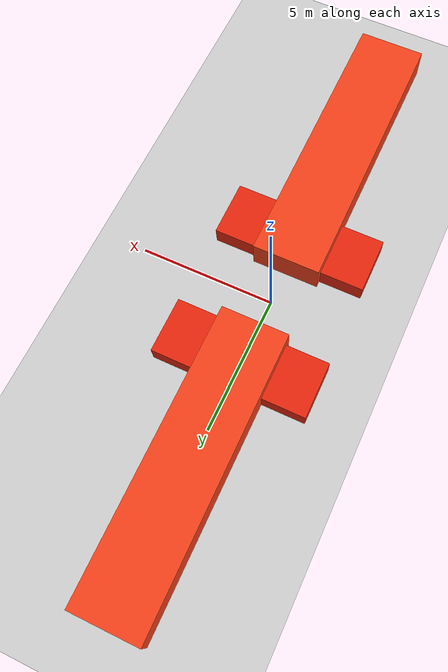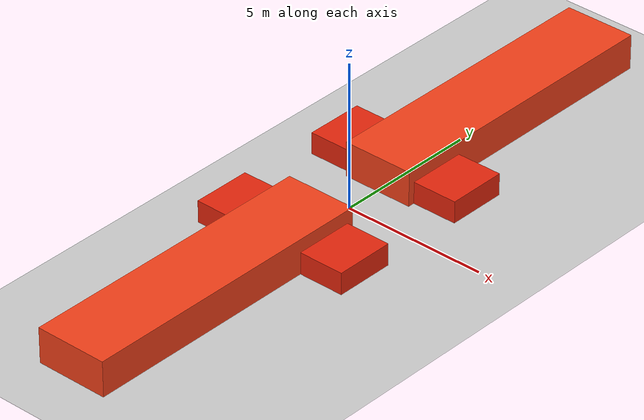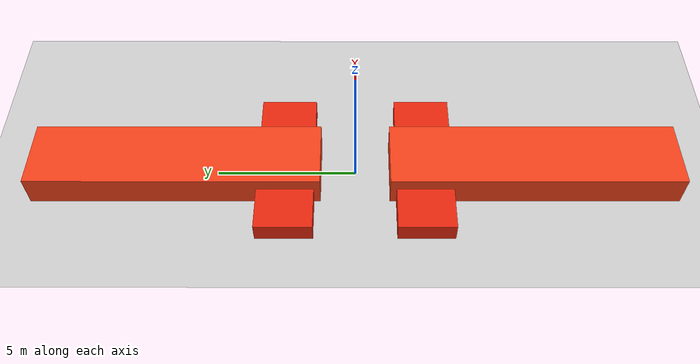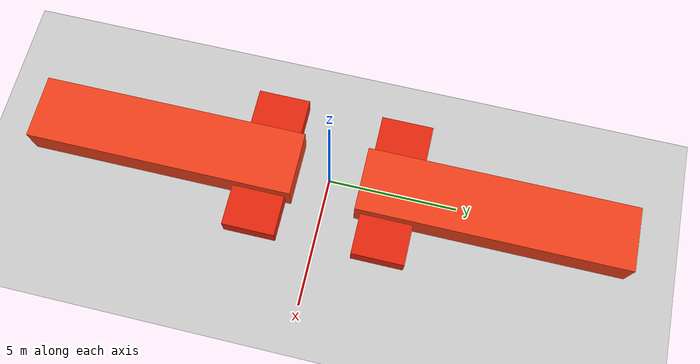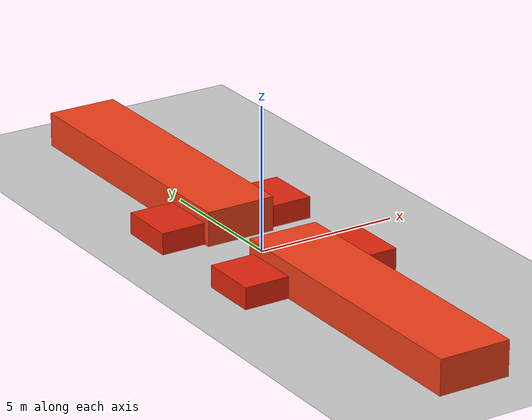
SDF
<sdf version="1.8">
 <world name="bottleneck_1">
  <scene><grid>false</grid></scene>
  <physics name="1ms" type="ignored">
   <max_step_size>0.002</max_step_size>
   <real_time_factor>1.0</real_time_factor>
  </physics>
  <plugin filename="libignition-gazebo-physics-system.so" name="ignition::gazebo::systems::Physics"/>
  <plugin filename="libignition-gazebo-sensors-system.so" name="ignition::gazebo::systems::Sensors">
   <render_engine>ogre</render_engine>
   <namespace>test</namespace>
  </plugin>
  <plugin filename="ignition-gazebo-imu-system" name="ignition::gazebo::systems::Imu"/>
  <plugin filename="libignition-gazebo-user-commands-system.so" name="ignition::gazebo::systems::UserCommands"/>
  <plugin filename="libignition-gazebo-scene-broadcaster-system.so" name="ignition::gazebo::systems::SceneBroadcaster"/>
  <light type="directional" name="sun">
   <cast_shadows>false</cast_shadows>
   <pose>0 0 10 0 0 0</pose>
   <diffuse>0.8 0.8 0.8 1</diffuse>
   <specular>0.2 0.2 0.2 1</specular>
   <attenuation>
    <range>1000</range>
    <constant>0.9</constant>
    <linear>0.01</linear>
    <quadratic>0.001</quadratic>
   </attenuation>
   <direction>-0.5 0.1 -0.9</direction>
  </light>
  <model name="ground_plane">
   <static>true</static>
   <link name="link">
    <collision name="collision"><geometry><plane><normal>0.0 0.0 1.0</normal></plane></geometry></collision>
    <visual name="visual">
     <geometry><plane><normal>0.0 0.0 1.0</normal><size>100 100</size></plane></geometry>
     <material>
      <ambient>0.8 0.8 0.8 1</ambient>
      <diffuse>0.8 0.8 0.8 1</diffuse>
      <specular>0.8 0.8 0.8 1</specular>
     </material>
    </visual>
   </link>
  </model>
  <model name="divider_north">
   <static>true</static>
   <pose>0.0000 6.4125 0.6000 0 0 0.0000</pose>
   <link name="link">
    <collision name="c"><geometry><box><size>2.4750 10.3500 1.2000</size></box></geometry></collision>
    <visual name="v">
     <geometry><box><size>2.4750 10.3500 1.2000</size></box></geometry>
     <material>
      <ambient>0.950 0.250 0.100 1</ambient>
      <diffuse>0.950 0.250 0.100 1</diffuse>
      <specular>0.2 0.2 0.2 1</specular>
     </material>
    </visual>
   </link>
  </model>
  <model name="divider_south">
   <static>true</static>
   <pose>0.0000 -6.4125 0.6000 0 0 0.0000</pose>
   <link name="link">
    <collision name="c"><geometry><box><size>2.4750 10.3500 1.2000</size></box></geometry></collision>
    <visual name="v">
     <geometry><box><size>2.4750 10.3500 1.2000</size></box></geometry>
     <material>
      <ambient>0.950 0.250 0.100 1</ambient>
      <diffuse>0.950 0.250 0.100 1</diffuse>
      <specular>0.2 0.2 0.2 1</specular>
     </material>
    </visual>
   </link>
  </model>
  <model name="flange_n_l">
   <static>true</static>
   <pose>-2.0250 2.4750 0.3750 0 0 0.0000</pose>
   <link name="link">
    <collision name="c"><geometry><box><size>1.5750 2.0250 0.7500</size></box></geometry></collision>
    <visual name="v">
     <geometry><box><size>1.5750 2.0250 0.7500</size></box></geometry>
     <material>
      <ambient>0.900 0.150 0.050 1</ambient>
      <diffuse>0.900 0.150 0.050 1</diffuse>
      <specular>0.2 0.2 0.2 1</specular>
     </material>
    </visual>
   </link>
  </model>
  <model name="flange_n_r">
   <static>true</static>
   <pose>2.0250 2.4750 0.3750 0 0 0.0000</pose>
   <link name="link">
    <collision name="c"><geometry><box><size>1.5750 2.0250 0.7500</size></box></geometry></collision>
    <visual name="v">
     <geometry><box><size>1.5750 2.0250 0.7500</size></box></geometry>
     <material>
      <ambient>0.900 0.150 0.050 1</ambient>
      <diffuse>0.900 0.150 0.050 1</diffuse>
      <specular>0.2 0.2 0.2 1</specular>
     </material>
    </visual>
   </link>
  </model>
  <model name="flange_s_l">
   <static>true</static>
   <pose>-2.0250 -2.4750 0.3750 0 0 0.0000</pose>
   <link name="link">
    <collision name="c"><geometry><box><size>1.5750 2.0250 0.7500</size></box></geometry></collision>
    <visual name="v">
     <geometry><box><size>1.5750 2.0250 0.7500</size></box></geometry>
     <material>
      <ambient>0.900 0.150 0.050 1</ambient>
      <diffuse>0.900 0.150 0.050 1</diffuse>
      <specular>0.2 0.2 0.2 1</specular>
     </material>
    </visual>
   </link>
  </model>
  <model name="flange_s_r">
   <static>true</static>
   <pose>2.0250 -2.4750 0.3750 0 0 0.0000</pose>
   <link name="link">
    <collision name="c"><geometry><box><size>1.5750 2.0250 0.7500</size></box></geometry></collision>
    <visual name="v">
     <geometry><box><size>1.5750 2.0250 0.7500</size></box></geometry>
     <material>
      <ambient>0.900 0.150 0.050 1</ambient>
      <diffuse>0.900 0.150 0.050 1</diffuse>
      <specular>0.2 0.2 0.2 1</specular>
     </material>
    </visual>
   </link>
  </model>
 </world>
</sdf>
